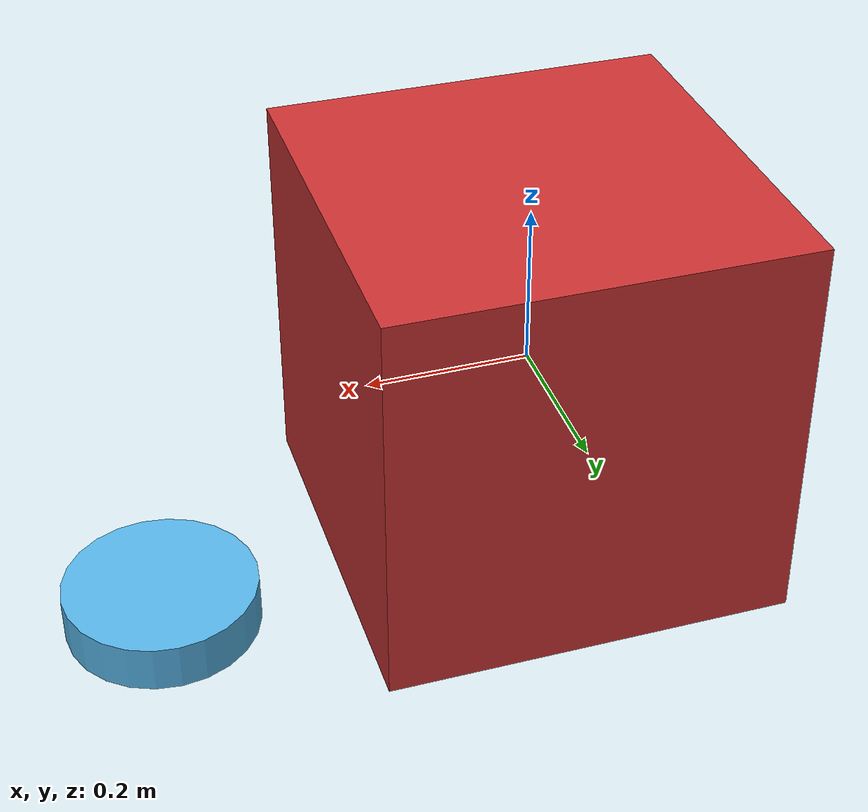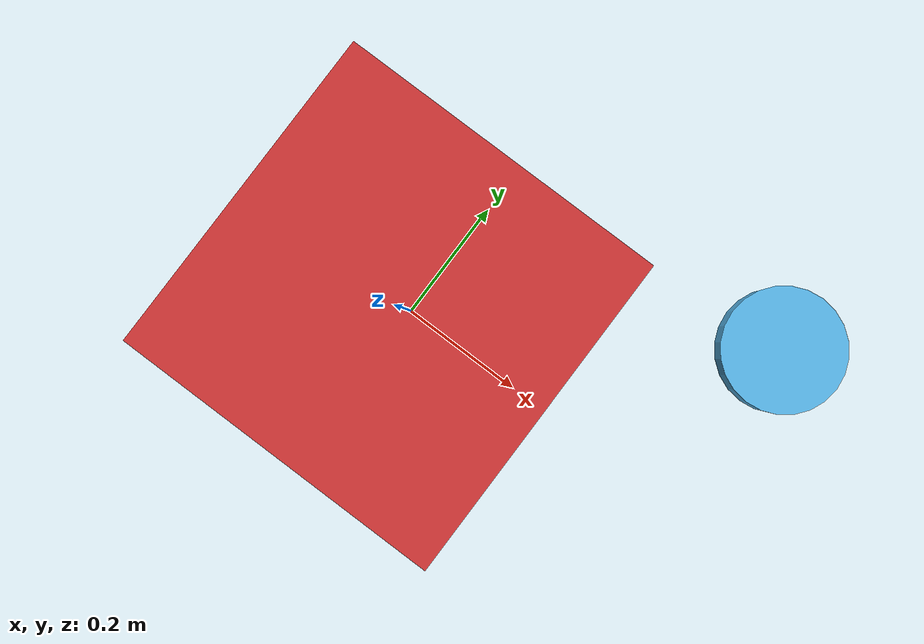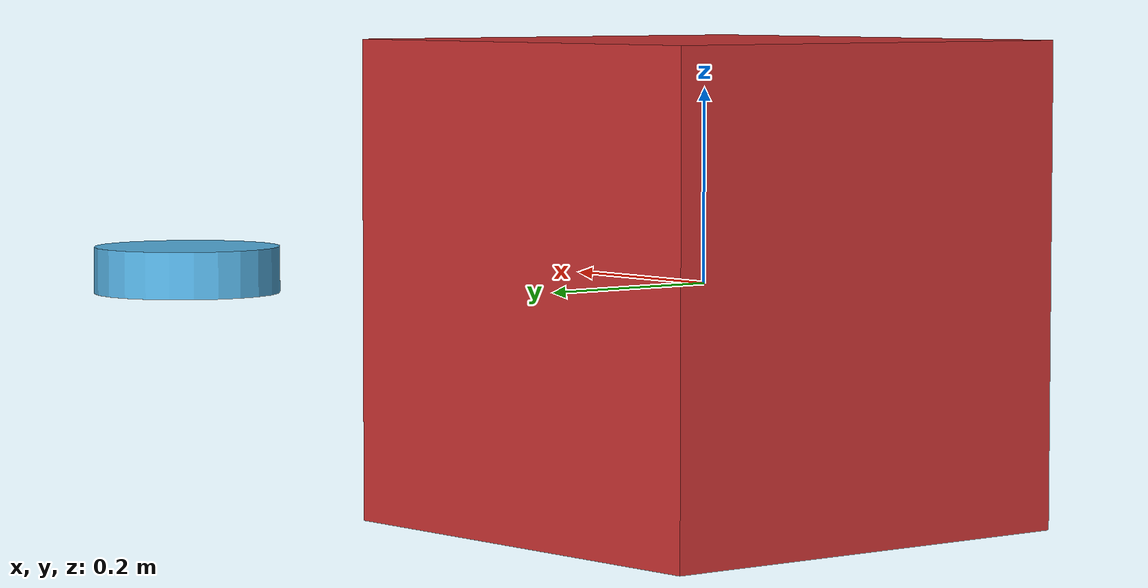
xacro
<?xml version="1.0"?>
<robot name="property_hover_test" xmlns:xacro="http://www.ros.org/wiki/xacro">

  <!-- Define some properties -->
  <xacro:property name="box_color" value="0.8 0.2 0.2 1.0"/>
  <xacro:property name="box_size" value="0.5"/>
  <xacro:property name="wheel_radius" value="0.1"/>
  <xacro:property name="chassis_length" value="1.0"/>
  <xacro:property name="chassis_width" value="0.6"/>

  <!-- Use properties in links -->
  <link name="base_link">
    <visual>
      <geometry>
        <!-- Hover over ${box_size} to see its value -->
        <box size="${box_size} ${box_size} ${box_size}"/>
      </geometry>
      <material name="box_material">
        <!-- Hover over ${box_color} to see its value -->
        <color rgba="${box_color}"/>
      </material>
    </visual>
    <collision>
      <geometry>
        <box size="${box_size} ${box_size} ${box_size}"/>
      </geometry>
    </collision>
    <inertial>
      <mass value="10.0"/>
      <inertia ixx="1.0" ixy="0.0" ixz="0.0" iyy="1.0" iyz="0.0" izz="1.0"/>
    </inertial>
  </link>

  <link name="wheel">
    <visual>
      <geometry>
        <!-- Hover over ${wheel_radius} to see its value -->
        <cylinder radius="${wheel_radius}" length="0.05"/>
      </geometry>
    </visual>
  </link>

  <joint name="wheel_joint" type="continuous">
    <parent link="base_link"/>
    <child link="wheel"/>
    <!-- Properties can be used in multiple places -->
    <origin xyz="${chassis_length/2} ${chassis_width/2} 0" rpy="0 0 0"/>
    <axis xyz="0 1 0"/>
  </joint>

</robot>
